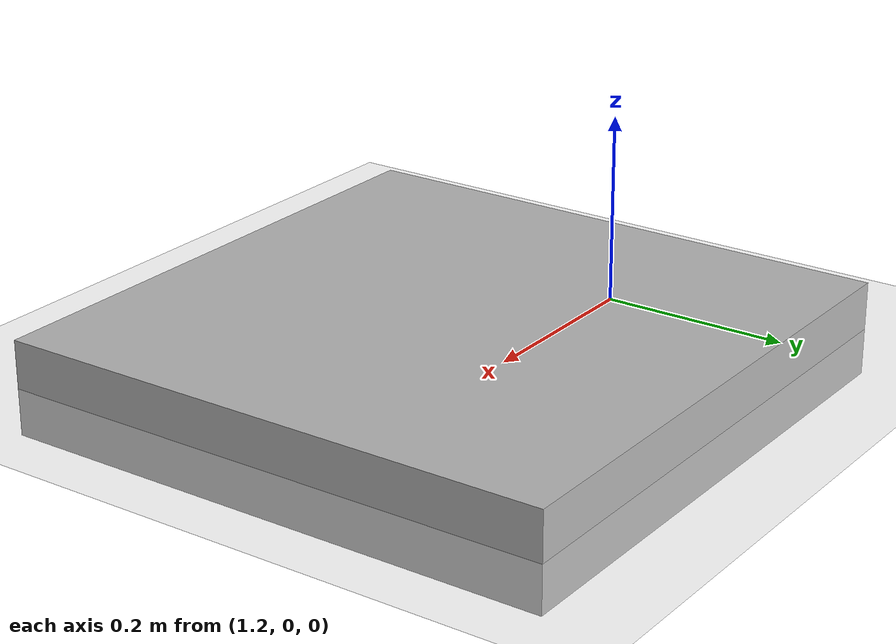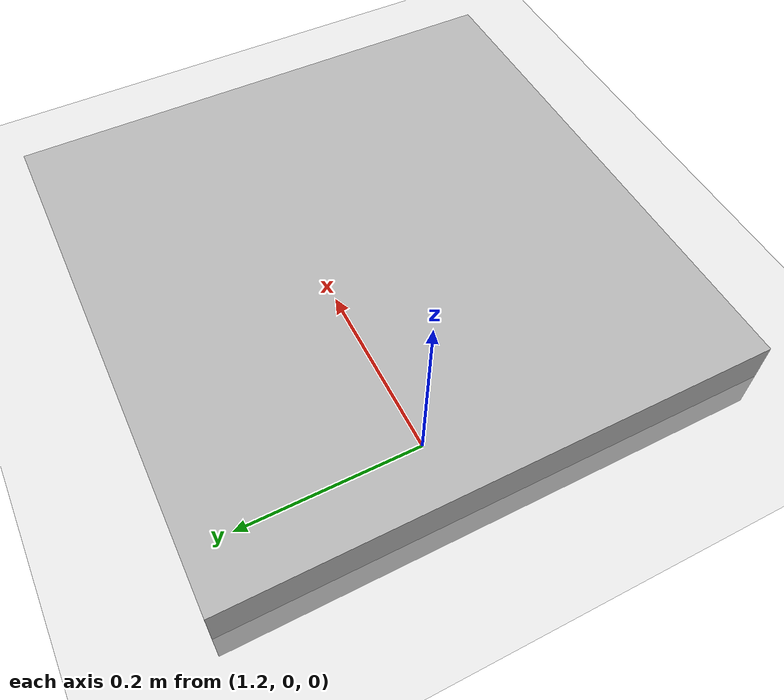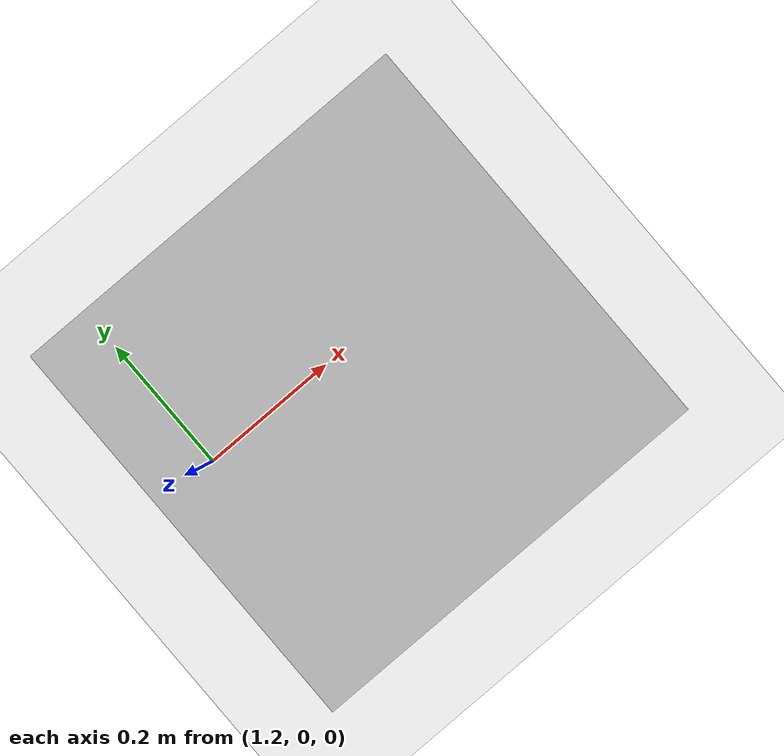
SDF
<sdf version="1.5">
 <world name="default">
  <spherical_coordinates>
   <latitude_deg>48.8789</latitude_deg>
   <longitude_deg>2.36778</longitude_deg>
   <surface_model>EARTH_WGS84</surface_model>
   <elevation>0</elevation>
   <heading_deg>0</heading_deg>
  </spherical_coordinates>
  <physics name="default_physics" default="0" type="ode">
   <real_time_update_rate>1000</real_time_update_rate>
   <max_step_size>0.001</max_step_size>
   <real_time_factor>1</real_time_factor>
   <max_contacts>20</max_contacts>
   <gravity>0 0 -9.81</gravity>
   <magnetic_field>0 2.1e-05 -4.3e-05</magnetic_field>
   <ode>
    <solver>
     <type>world</type>
     <min_step_size>0.0001</min_step_size>
     <iters>50</iters>
     <precon_iters>0</precon_iters>
     <sor>1.4</sor>
     <use_dynamic_moi_rescaling>1</use_dynamic_moi_rescaling>
    </solver>
    <constraints>
     <cfm>0</cfm>
     <erp>0.2</erp>
     <contact_max_correcting_vel>100</contact_max_correcting_vel>
     <contact_surface_layer>0.001</contact_surface_layer>
    </constraints>
   </ode>
  </physics>
  <atmosphere type="adiabatic">
   <temperature>298.15</temperature>
   <pressure>101325</pressure>
   <temperature_gradient>-0.0065</temperature_gradient>
  </atmosphere>
  <plugin name="wind" filename="libsphinx_wind.so">
   <magnitude_mean>0.0</magnitude_mean>
   <direction_mean>0.0</direction_mean>
   <elevation_mean>0.0</elevation_mean>
   <magnitude_time_for_rise>10.0</magnitude_time_for_rise>
   <direction_time_for_rise>30.0</direction_time_for_rise>
   <elevation_time_for_rise>0.0</elevation_time_for_rise>
   <magnitude_expr>val*(1+0.05*sin(2*pi*time/15))</magnitude_expr>
   <direction_expr>360*time/60</direction_expr>
   <elevation_expr>0.03*noise()</elevation_expr>
  </plugin>
  <light name="sun" type="directional">
   <pose>0 0 10 0 -0 0</pose>
   <diffuse>0.8 0.8 0.8 1</diffuse>
   <specular>0.2 0.2 0.2 1</specular>
   <attenuation>
    <range>1000</range>
    <constant>0.9</constant>
    <linear>0.01</linear>
    <quadratic>0.001</quadratic>
   </attenuation>
   <direction>-0.5 0.1 -0.9</direction>
  </light>
  <model name="ground_plane">
   <static>1</static>
   <link name="link">
    <collision name="collision">
     <geometry><plane><normal>0 0 1</normal><size>100 100</size></plane></geometry>
     <surface><friction><ode><mu>100</mu><mu2>50</mu2></ode></friction></surface>
    </collision>
    <visual name="visual">
     <cast_shadows>0</cast_shadows>
     <geometry><plane><normal>0 0 1</normal><size>100 100</size></plane></geometry>
     <material>
      <script><uri>file://media/materials/scripts/gazebo.material</uri><name>Gazebo/Grey</name></script>
     </material>
    </visual>
   </link>
  </model>
  <scene><ambient>0.4 0.4 0.4 1</ambient><background>0.7 0.7 0.7 1</background><shadows>0</shadows></scene>
  <model name="aruco_1">
   <static>1</static>
   <link name="link">
    <collision name="collision"><geometry><box><size>0.6 0.6 0.1</size></box></geometry></collision>
    <visual name="visual">
     <cast_shadows>0</cast_shadows>
     <geometry><box><size>0.6 0.6 0.1</size></box></geometry>
     <material>
      <script>
       <uri>model://aruco_1/materials/scripts</uri>
       <uri>model://aruco_1/materials/textures</uri>
       <name>arucoBox</name>
      </script>
     </material>
    </visual>
   </link>
   <pose>1.41715 -0.04763 0 0 -0 0</pose>
  </model>
 </world>
</sdf>
